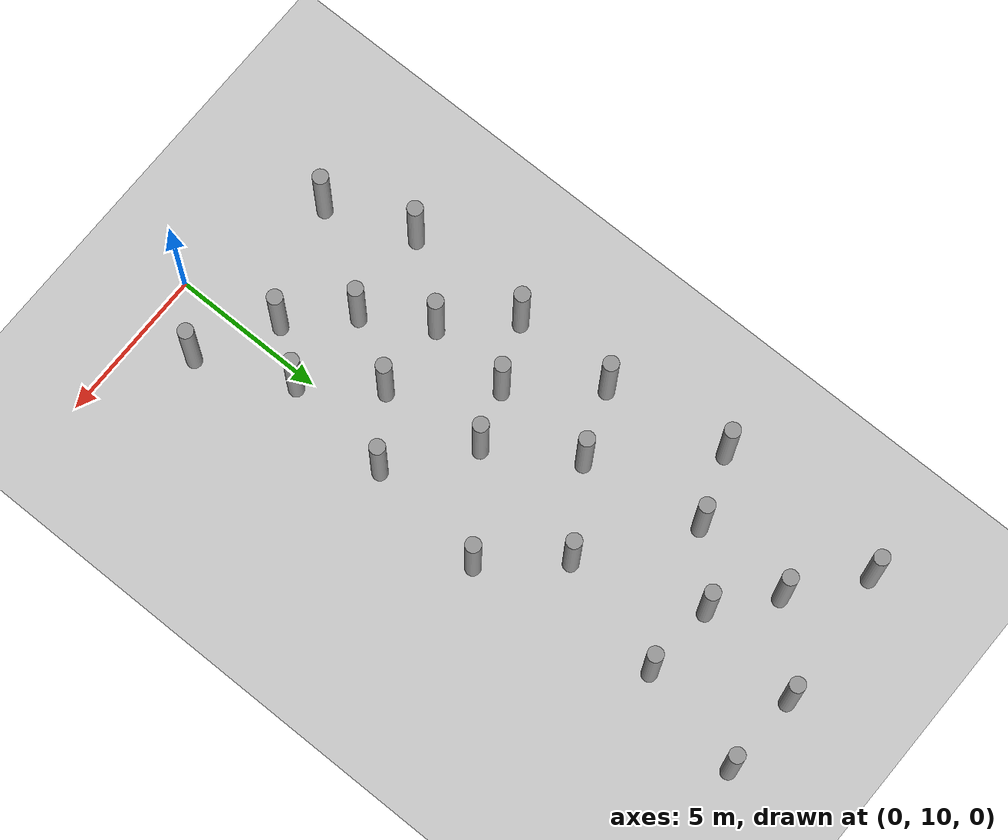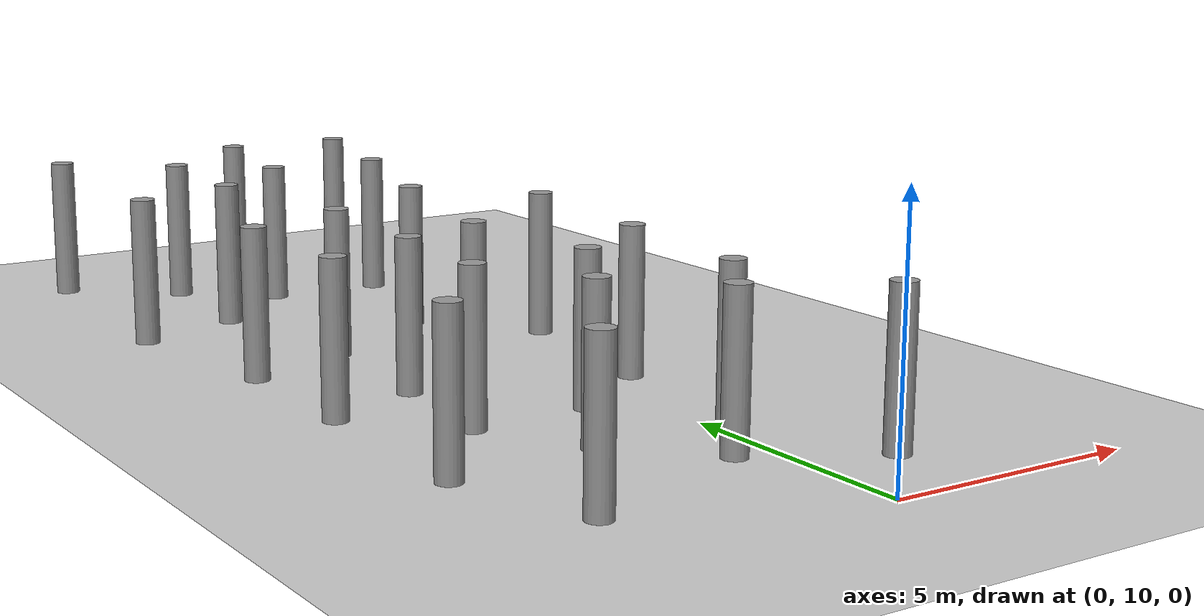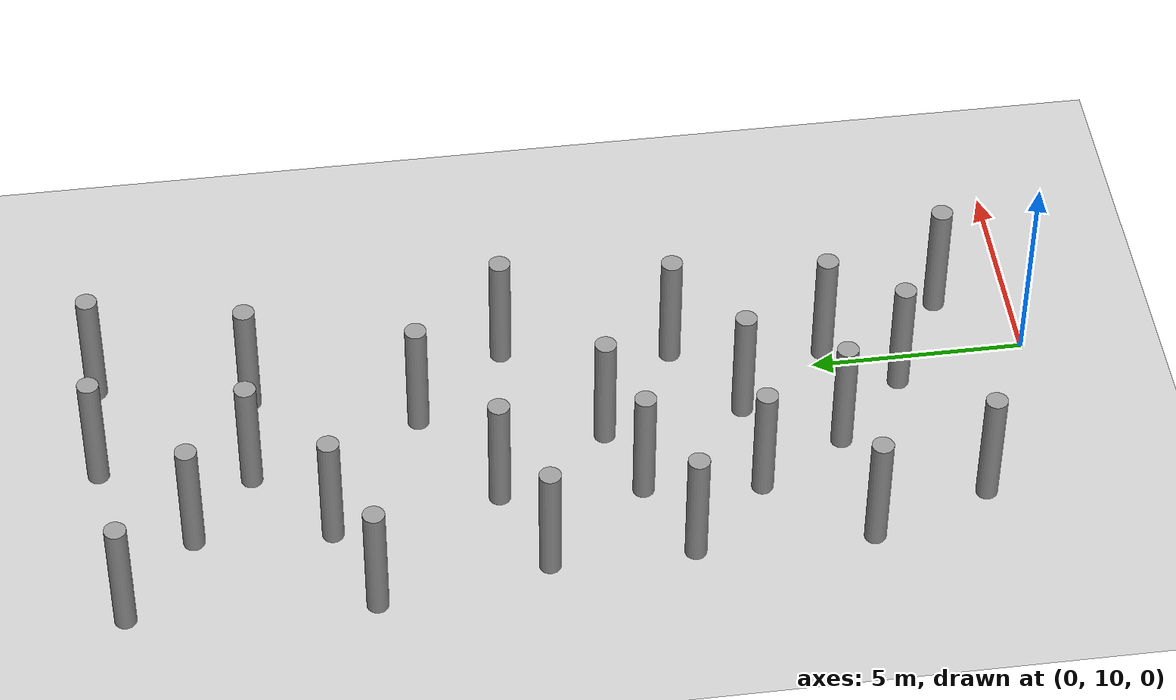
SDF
<sdf version="1.6">
 <world name="default">
  <model name="ground_plane">
   <static>1</static>
   <link name="link">
    <collision name="collision">
     <geometry><plane><normal>0 0 1</normal><size>100 100</size></plane></geometry>
     <surface><friction><ode><mu>100</mu><mu2>50</mu2></ode></friction></surface>
    </collision>
    <visual name="visual">
     <cast_shadows>0</cast_shadows>
     <geometry><plane><normal>0 0 1</normal><size>100 100</size></plane></geometry>
     <material>
      <script><uri>file://media/materials/scripts/gazebo.material</uri><name>Gazebo/Grey</name></script>
     </material>
    </visual>
   </link>
  </model>
  <model name="LjjForest_3">
   <link name="link_0">
    <inertial>
     <mass>1</mass>
     <inertia><ixx>0.145833</ixx><ixy>0</ixy><ixz>0</ixz><iyy>0.145833</iyy><iyz>0</iyz><izz>0.125</izz></inertia>
    </inertial>
    <pose>-5.02717 0.116957 0 0 -0 0</pose>
    <visual name="visual">
     <geometry><cylinder><radius>0.25</radius><length>3</length></cylinder></geometry>
     <material>
      <lighting>1</lighting>
      <script><uri>file://media/materials/scripts/gazebo.material</uri><name>Gazebo/Grey</name></script>
      <shader type="vertex"><normal_map>__default__</normal_map></shader>
      <ambient>0.3 0.3 0.3 1</ambient>
      <diffuse>0.7 0.7 0.7 1</diffuse>
      <specular>0.01 0.01 0.01 1</specular>
      <emissive>0 0 0 1</emissive>
     </material>
    </visual>
    <collision name="collision">
     <geometry><cylinder><radius>0.25</radius><length>3</length></cylinder></geometry>
     <surface>
      <friction>
       <ode><mu>1</mu><mu2>1</mu2><fdir1>0 0 0</fdir1><slip1>0</slip1><slip2>0</slip2></ode>
       <torsional>
        <coefficient>1</coefficient>
        <patch_radius>0</patch_radius>
        <surface_radius>0</surface_radius>
        <use_patch_radius>1</use_patch_radius>
        <ode><slip>0</slip></ode>
       </torsional>
      </friction>
      <bounce><restitution_coefficient>0</restitution_coefficient><threshold>1e+06</threshold></bounce>
      <contact>
       <collide_without_contact>0</collide_without_contact>
       <collide_without_contact_bitmask>1</collide_without_contact_bitmask>
       <collide_bitmask>1</collide_bitmask>
       <ode>
        <soft_cfm>0</soft_cfm>
        <soft_erp>0.2</soft_erp>
        <kp>1e+13</kp>
        <kd>1</kd>
        <max_vel>0.01</max_vel>
        <min_depth>0</min_depth>
       </ode>
       <bullet>
        <split_impulse>1</split_impulse>
        <split_impulse_penetration_threshold>-0.01</split_impulse_penetration_threshold>
        <soft_cfm>0</soft_cfm>
        <soft_erp>0.2</soft_erp>
        <kp>1e+13</kp>
        <kd>1</kd>
       </bullet>
      </contact>
     </surface>
    </collision>
   </link>
   <link name="link_0_clone">
    <inertial>
     <mass>1</mass>
     <inertia><ixx>0.145833</ixx><ixy>0</ixy><ixz>0</ixz><iyy>0.145833</iyy><iyz>0</iyz><izz>0.125</izz></inertia>
    </inertial>
    <pose>-2.83119 0.981911 0 0 -0 0</pose>
    <visual name="visual">
     <geometry><cylinder><radius>0.25</radius><length>3</length></cylinder></geometry>
     <material>
      <lighting>1</lighting>
      <script><uri>file://media/materials/scripts/gazebo.material</uri><name>Gazebo/Grey</name></script>
      <shader type="vertex"><normal_map>__default__</normal_map></shader>
      <ambient>0.3 0.3 0.3 1</ambient>
      <diffuse>0.7 0.7 0.7 1</diffuse>
      <specular>0.01 0.01 0.01 1</specular>
      <emissive>0 0 0 1</emissive>
     </material>
    </visual>
    <collision name="collision">
     <geometry><cylinder><radius>0.25</radius><length>3</length></cylinder></geometry>
     <surface>
      <friction>
       <ode><mu>1</mu><mu2>1</mu2><fdir1>0 0 0</fdir1><slip1>0</slip1><slip2>0</slip2></ode>
       <torsional>
        <coefficient>1</coefficient>
        <patch_radius>0</patch_radius>
        <surface_radius>0</surface_radius>
        <use_patch_radius>1</use_patch_radius>
        <ode><slip>0</slip></ode>
       </torsional>
      </friction>
      <bounce><restitution_coefficient>0</restitution_coefficient><threshold>1e+06</threshold></bounce>
      <contact>
       <collide_without_contact>0</collide_without_contact>
       <collide_without_contact_bitmask>1</collide_without_contact_bitmask>
       <collide_bitmask>1</collide_bitmask>
       <ode>
        <soft_cfm>0</soft_cfm>
        <soft_erp>0.2</soft_erp>
        <kp>1e+13</kp>
        <kd>1</kd>
        <max_vel>0.01</max_vel>
        <min_depth>0</min_depth>
       </ode>
       <bullet>
        <split_impulse>1</split_impulse>
        <split_impulse_penetration_threshold>-0.01</split_impulse_penetration_threshold>
        <soft_cfm>0</soft_cfm>
        <soft_erp>0.2</soft_erp>
        <kp>1e+13</kp>
        <kd>1</kd>
       </bullet>
      </contact>
     </surface>
    </collision>
   </link>
   <link name="link_0_clone_0">
    <inertial>
     <mass>1</mass>
     <inertia><ixx>0.145833</ixx><ixy>0</ixy><ixz>0</ixz><iyy>0.145833</iyy><iyz>0</iyz><izz>0.125</izz></inertia>
    </inertial>
    <pose>-0.25253 2.5682 0 0 -0 0</pose>
    <visual name="visual">
     <geometry><cylinder><radius>0.25</radius><length>3</length></cylinder></geometry>
     <material>
      <lighting>1</lighting>
      <script><uri>file://media/materials/scripts/gazebo.material</uri><name>Gazebo/Grey</name></script>
      <shader type="vertex"><normal_map>__default__</normal_map></shader>
      <ambient>0.3 0.3 0.3 1</ambient>
      <diffuse>0.7 0.7 0.7 1</diffuse>
      <specular>0.01 0.01 0.01 1</specular>
      <emissive>0 0 0 1</emissive>
     </material>
    </visual>
    <collision name="collision">
     <geometry><cylinder><radius>0.25</radius><length>3</length></cylinder></geometry>
     <surface>
      <friction>
       <ode><mu>1</mu><mu2>1</mu2><fdir1>0 0 0</fdir1><slip1>0</slip1><slip2>0</slip2></ode>
       <torsional>
        <coefficient>1</coefficient>
        <patch_radius>0</patch_radius>
        <surface_radius>0</surface_radius>
        <use_patch_radius>1</use_patch_radius>
        <ode><slip>0</slip></ode>
       </torsional>
      </friction>
      <bounce><restitution_coefficient>0</restitution_coefficient><threshold>1e+06</threshold></bounce>
      <contact>
       <collide_without_contact>0</collide_without_contact>
       <collide_without_contact_bitmask>1</collide_without_contact_bitmask>
       <collide_bitmask>1</collide_bitmask>
       <ode>
        <soft_cfm>0</soft_cfm>
        <soft_erp>0.2</soft_erp>
        <kp>1e+13</kp>
        <kd>1</kd>
        <max_vel>0.01</max_vel>
        <min_depth>0</min_depth>
       </ode>
       <bullet>
        <split_impulse>1</split_impulse>
        <split_impulse_penetration_threshold>-0.01</split_impulse_penetration_threshold>
        <soft_cfm>0</soft_cfm>
        <soft_erp>0.2</soft_erp>
        <kp>1e+13</kp>
        <kd>1</kd>
       </bullet>
      </contact>
     </surface>
    </collision>
   </link>
   <link name="link_0_clone_1">
    <inertial>
     <mass>1</mass>
     <inertia><ixx>0.145833</ixx><ixy>0</ixy><ixz>0</ixz><iyy>0.145833</iyy><iyz>0</iyz><izz>0.125</izz></inertia>
    </inertial>
    <pose>-1.2394 -1.64814 0 0 -0 0</pose>
    <visual name="visual">
     <geometry><cylinder><radius>0.25</radius><length>3</length></cylinder></geometry>
     <material>
      <lighting>1</lighting>
      <script><uri>file://media/materials/scripts/gazebo.material</uri><name>Gazebo/Grey</name></script>
      <shader type="vertex"><normal_map>__default__</normal_map></shader>
      <ambient>0.3 0.3 0.3 1</ambient>
      <diffuse>0.7 0.7 0.7 1</diffuse>
      <specular>0.01 0.01 0.01 1</specular>
      <emissive>0 0 0 1</emissive>
     </material>
    </visual>
    <collision name="collision">
     <geometry><cylinder><radius>0.25</radius><length>3</length></cylinder></geometry>
     <surface>
      <friction>
       <ode><mu>1</mu><mu2>1</mu2><fdir1>0 0 0</fdir1><slip1>0</slip1><slip2>0</slip2></ode>
       <torsional>
        <coefficient>1</coefficient>
        <patch_radius>0</patch_radius>
        <surface_radius>0</surface_radius>
        <use_patch_radius>1</use_patch_radius>
        <ode><slip>0</slip></ode>
       </torsional>
      </friction>
      <bounce><restitution_coefficient>0</restitution_coefficient><threshold>1e+06</threshold></bounce>
      <contact>
       <collide_without_contact>0</collide_without_contact>
       <collide_without_contact_bitmask>1</collide_without_contact_bitmask>
       <collide_bitmask>1</collide_bitmask>
       <ode>
        <soft_cfm>0</soft_cfm>
        <soft_erp>0.2</soft_erp>
        <kp>1e+13</kp>
        <kd>1</kd>
        <max_vel>0.01</max_vel>
        <min_depth>0</min_depth>
       </ode>
       <bullet>
        <split_impulse>1</split_impulse>
        <split_impulse_penetration_threshold>-0.01</split_impulse_penetration_threshold>
        <soft_cfm>0</soft_cfm>
        <soft_erp>0.2</soft_erp>
        <kp>1e+13</kp>
        <kd>1</kd>
       </bullet>
      </contact>
     </surface>
    </collision>
   </link>
   <link name="link_0_clone_13">
    <inertial>
     <mass>1</mass>
     <inertia><ixx>0.145833</ixx><ixy>0</ixy><ixz>0</ixz><iyy>0.145833</iyy><iyz>0</iyz><izz>0.125</izz></inertia>
    </inertial>
    <pose>0.731055 -7.10049 0 0 -0 0</pose>
    <visual name="visual">
     <geometry><cylinder><radius>0.25</radius><length>3</length></cylinder></geometry>
     <material>
      <lighting>1</lighting>
      <script><uri>file://media/materials/scripts/gazebo.material</uri><name>Gazebo/Grey</name></script>
      <shader type="vertex"><normal_map>__default__</normal_map></shader>
      <ambient>0.3 0.3 0.3 1</ambient>
      <diffuse>0.7 0.7 0.7 1</diffuse>
      <specular>0.01 0.01 0.01 1</specular>
      <emissive>0 0 0 1</emissive>
     </material>
    </visual>
    <collision name="collision">
     <geometry><cylinder><radius>0.25</radius><length>3</length></cylinder></geometry>
     <surface>
      <friction>
       <ode><mu>1</mu><mu2>1</mu2><fdir1>0 0 0</fdir1><slip1>0</slip1><slip2>0</slip2></ode>
       <torsional>
        <coefficient>1</coefficient>
        <patch_radius>0</patch_radius>
        <surface_radius>0</surface_radius>
        <use_patch_radius>1</use_patch_radius>
        <ode><slip>0</slip></ode>
       </torsional>
      </friction>
      <bounce><restitution_coefficient>0</restitution_coefficient><threshold>1e+06</threshold></bounce>
      <contact>
       <collide_without_contact>0</collide_without_contact>
       <collide_without_contact_bitmask>1</collide_without_contact_bitmask>
       <collide_bitmask>1</collide_bitmask>
       <ode>
        <soft_cfm>0</soft_cfm>
        <soft_erp>0.2</soft_erp>
        <kp>1e+13</kp>
        <kd>1</kd>
        <max_vel>0.01</max_vel>
        <min_depth>0</min_depth>
       </ode>
       <bullet>
        <split_impulse>1</split_impulse>
        <split_impulse_penetration_threshold>-0.01</split_impulse_penetration_threshold>
        <soft_cfm>0</soft_cfm>
        <soft_erp>0.2</soft_erp>
        <kp>1e+13</kp>
        <kd>1</kd>
       </bullet>
      </contact>
     </surface>
    </collision>
   </link>
   <link name="link_0_clone_14">
    <inertial>
     <mass>1</mass>
     <inertia><ixx>0.145833</ixx><ixy>0</ixy><ixz>0</ixz><iyy>0.145833</iyy><iyz>0</iyz><izz>0.125</izz></inertia>
    </inertial>
    <pose>-0.840028 -4.93267 0 0 -0 0</pose>
    <visual name="visual">
     <geometry><cylinder><radius>0.25</radius><length>3</length></cylinder></geometry>
     <material>
      <lighting>1</lighting>
      <script><uri>file://media/materials/scripts/gazebo.material</uri><name>Gazebo/Grey</name></script>
      <shader type="vertex"><normal_map>__default__</normal_map></shader>
      <ambient>0.3 0.3 0.3 1</ambient>
      <diffuse>0.7 0.7 0.7 1</diffuse>
      <specular>0.01 0.01 0.01 1</specular>
      <emissive>0 0 0 1</emissive>
     </material>
    </visual>
    <collision name="collision">
     <geometry><cylinder><radius>0.25</radius><length>3</length></cylinder></geometry>
     <surface>
      <friction>
       <ode><mu>1</mu><mu2>1</mu2><fdir1>0 0 0</fdir1><slip1>0</slip1><slip2>0</slip2></ode>
       <torsional>
        <coefficient>1</coefficient>
        <patch_radius>0</patch_radius>
        <surface_radius>0</surface_radius>
        <use_patch_radius>1</use_patch_radius>
        <ode><slip>0</slip></ode>
       </torsional>
      </friction>
      <bounce><restitution_coefficient>0</restitution_coefficient><threshold>1e+06</threshold></bounce>
      <contact>
       <collide_without_contact>0</collide_without_contact>
       <collide_without_contact_bitmask>1</collide_without_contact_bitmask>
       <collide_bitmask>1</collide_bitmask>
       <ode>
        <soft_cfm>0</soft_cfm>
        <soft_erp>0.2</soft_erp>
        <kp>1e+13</kp>
        <kd>1</kd>
        <max_vel>0.01</max_vel>
        <min_depth>0</min_depth>
       </ode>
       <bullet>
        <split_impulse>1</split_impulse>
        <split_impulse_penetration_threshold>-0.01</split_impulse_penetration_threshold>
        <soft_cfm>0</soft_cfm>
        <soft_erp>0.2</soft_erp>
        <kp>1e+13</kp>
        <kd>1</kd>
       </bullet>
      </contact>
     </surface>
    </collision>
   </link>
   <link name="link_0_clone_15">
    <inertial>
     <mass>1</mass>
     <inertia><ixx>0.145833</ixx><ixy>0</ixy><ixz>0</ixz><iyy>0.145833</iyy><iyz>0</iyz><izz>0.125</izz></inertia>
    </inertial>
    <pose>-3.03254 -2.29236 0 0 -0 0</pose>
    <visual name="visual">
     <geometry><cylinder><radius>0.25</radius><length>3</length></cylinder></geometry>
     <material>
      <lighting>1</lighting>
      <script><uri>file://media/materials/scripts/gazebo.material</uri><name>Gazebo/Grey</name></script>
      <shader type="vertex"><normal_map>__default__</normal_map></shader>
      <ambient>0.3 0.3 0.3 1</ambient>
      <diffuse>0.7 0.7 0.7 1</diffuse>
      <specular>0.01 0.01 0.01 1</specular>
      <emissive>0 0 0 1</emissive>
     </material>
    </visual>
    <collision name="collision">
     <geometry><cylinder><radius>0.25</radius><length>3</length></cylinder></geometry>
     <surface>
      <friction>
       <ode><mu>1</mu><mu2>1</mu2><fdir1>0 0 0</fdir1><slip1>0</slip1><slip2>0</slip2></ode>
       <torsional>
        <coefficient>1</coefficient>
        <patch_radius>0</patch_radius>
        <surface_radius>0</surface_radius>
        <use_patch_radius>1</use_patch_radius>
        <ode><slip>0</slip></ode>
       </torsional>
      </friction>
      <bounce><restitution_coefficient>0</restitution_coefficient><threshold>1e+06</threshold></bounce>
      <contact>
       <collide_without_contact>0</collide_without_contact>
       <collide_without_contact_bitmask>1</collide_without_contact_bitmask>
       <collide_bitmask>1</collide_bitmask>
       <ode>
        <soft_cfm>0</soft_cfm>
        <soft_erp>0.2</soft_erp>
        <kp>1e+13</kp>
        <kd>1</kd>
        <max_vel>0.01</max_vel>
        <min_depth>0</min_depth>
       </ode>
       <bullet>
        <split_impulse>1</split_impulse>
        <split_impulse_penetration_threshold>-0.01</split_impulse_penetration_threshold>
        <soft_cfm>0</soft_cfm>
        <soft_erp>0.2</soft_erp>
        <kp>1e+13</kp>
        <kd>1</kd>
       </bullet>
      </contact>
     </surface>
    </collision>
   </link>
   <link name="link_0_clone_16">
    <inertial>
     <mass>1</mass>
     <inertia><ixx>0.145833</ixx><ixy>0</ixy><ixz>0</ixz><iyy>0.145833</iyy><iyz>0</iyz><izz>0.125</izz></inertia>
    </inertial>
    <pose>-5.04025 -3.1815 0 0 -0 0</pose>
    <visual name="visual">
     <geometry><cylinder><radius>0.25</radius><length>3</length></cylinder></geometry>
     <material>
      <lighting>1</lighting>
      <script><uri>file://media/materials/scripts/gazebo.material</uri><name>Gazebo/Grey</name></script>
      <shader type="vertex"><normal_map>__default__</normal_map></shader>
      <ambient>0.3 0.3 0.3 1</ambient>
      <diffuse>0.7 0.7 0.7 1</diffuse>
      <specular>0.01 0.01 0.01 1</specular>
      <emissive>0 0 0 1</emissive>
     </material>
    </visual>
    <collision name="collision">
     <geometry><cylinder><radius>0.25</radius><length>3</length></cylinder></geometry>
     <surface>
      <friction>
       <ode><mu>1</mu><mu2>1</mu2><fdir1>0 0 0</fdir1><slip1>0</slip1><slip2>0</slip2></ode>
       <torsional>
        <coefficient>1</coefficient>
        <patch_radius>0</patch_radius>
        <surface_radius>0</surface_radius>
        <use_patch_radius>1</use_patch_radius>
        <ode><slip>0</slip></ode>
       </torsional>
      </friction>
      <bounce><restitution_coefficient>0</restitution_coefficient><threshold>1e+06</threshold></bounce>
      <contact>
       <collide_without_contact>0</collide_without_contact>
       <collide_without_contact_bitmask>1</collide_without_contact_bitmask>
       <collide_bitmask>1</collide_bitmask>
       <ode>
        <soft_cfm>0</soft_cfm>
        <soft_erp>0.2</soft_erp>
        <kp>1e+13</kp>
        <kd>1</kd>
        <max_vel>0.01</max_vel>
        <min_depth>0</min_depth>
       </ode>
       <bullet>
        <split_impulse>1</split_impulse>
        <split_impulse_penetration_threshold>-0.01</split_impulse_penetration_threshold>
        <soft_cfm>0</soft_cfm>
        <soft_erp>0.2</soft_erp>
        <kp>1e+13</kp>
        <kd>1</kd>
       </bullet>
      </contact>
     </surface>
    </collision>
   </link>
   <link name="link_0_clone_17">
    <inertial>
     <mass>1</mass>
     <inertia><ixx>0.145833</ixx><ixy>0</ixy><ixz>0</ixz><iyy>0.145833</iyy><iyz>0</iyz><izz>0.125</izz></inertia>
    </inertial>
    <pose>-3.28823 -4.99733 0 0 -0 0</pose>
    <visual name="visual">
     <geometry><cylinder><radius>0.25</radius><length>3</length></cylinder></geometry>
     <material>
      <lighting>1</lighting>
      <script><uri>file://media/materials/scripts/gazebo.material</uri><name>Gazebo/Grey</name></script>
      <shader type="vertex"><normal_map>__default__</normal_map></shader>
      <ambient>0.3 0.3 0.3 1</ambient>
      <diffuse>0.7 0.7 0.7 1</diffuse>
      <specular>0.01 0.01 0.01 1</specular>
      <emissive>0 0 0 1</emissive>
     </material>
    </visual>
    <collision name="collision">
     <geometry><cylinder><radius>0.25</radius><length>3</length></cylinder></geometry>
     <surface>
      <friction>
       <ode><mu>1</mu><mu2>1</mu2><fdir1>0 0 0</fdir1><slip1>0</slip1><slip2>0</slip2></ode>
       <torsional>
        <coefficient>1</coefficient>
        <patch_radius>0</patch_radius>
        <surface_radius>0</surface_radius>
        <use_patch_radius>1</use_patch_radius>
        <ode><slip>0</slip></ode>
       </torsional>
      </friction>
      <bounce><restitution_coefficient>0</restitution_coefficient><threshold>1e+06</threshold></bounce>
      <contact>
       <collide_without_contact>0</collide_without_contact>
       <collide_without_contact_bitmask>1</collide_without_contact_bitmask>
       <collide_bitmask>1</collide_bitmask>
       <ode>
        <soft_cfm>0</soft_cfm>
        <soft_erp>0.2</soft_erp>
        <kp>1e+13</kp>
        <kd>1</kd>
        <max_vel>0.01</max_vel>
        <min_depth>0</min_depth>
       </ode>
       <bullet>
        <split_impulse>1</split_impulse>
        <split_impulse_penetration_threshold>-0.01</split_impulse_penetration_threshold>
        <soft_cfm>0</soft_cfm>
        <soft_erp>0.2</soft_erp>
        <kp>1e+13</kp>
        <kd>1</kd>
       </bullet>
      </contact>
     </surface>
    </collision>
   </link>
   <link name="link_0_clone_18">
    <inertial>
     <mass>1</mass>
     <inertia><ixx>0.145833</ixx><ixy>0</ixy><ixz>0</ixz><iyy>0.145833</iyy><iyz>0</iyz><izz>0.125</izz></inertia>
    </inertial>
    <pose>-2.11118 -7.04502 0 0 -0 0</pose>
    <visual name="visual">
     <geometry><cylinder><radius>0.25</radius><length>3</length></cylinder></geometry>
     <material>
      <lighting>1</lighting>
      <script><uri>file://media/materials/scripts/gazebo.material</uri><name>Gazebo/Grey</name></script>
      <shader type="vertex"><normal_map>__default__</normal_map></shader>
      <ambient>0.3 0.3 0.3 1</ambient>
      <diffuse>0.7 0.7 0.7 1</diffuse>
      <specular>0.01 0.01 0.01 1</specular>
      <emissive>0 0 0 1</emissive>
     </material>
    </visual>
    <collision name="collision">
     <geometry><cylinder><radius>0.25</radius><length>3</length></cylinder></geometry>
     <surface>
      <friction>
       <ode><mu>1</mu><mu2>1</mu2><fdir1>0 0 0</fdir1><slip1>0</slip1><slip2>0</slip2></ode>
       <torsional>
        <coefficient>1</coefficient>
        <patch_radius>0</patch_radius>
        <surface_radius>0</surface_radius>
        <use_patch_radius>1</use_patch_radius>
        <ode><slip>0</slip></ode>
       </torsional>
      </friction>
      <bounce><restitution_coefficient>0</restitution_coefficient><threshold>1e+06</threshold></bounce>
      <contact>
       <collide_without_contact>0</collide_without_contact>
       <collide_without_contact_bitmask>1</collide_without_contact_bitmask>
       <collide_bitmask>1</collide_bitmask>
       <ode>
        <soft_cfm>0</soft_cfm>
        <soft_erp>0.2</soft_erp>
        <kp>1e+13</kp>
        <kd>1</kd>
        <max_vel>0.01</max_vel>
        <min_depth>0</min_depth>
       </ode>
       <bullet>
        <split_impulse>1</split_impulse>
        <split_impulse_penetration_threshold>-0.01</split_impulse_penetration_threshold>
        <soft_cfm>0</soft_cfm>
        <soft_erp>0.2</soft_erp>
        <kp>1e+13</kp>
        <kd>1</kd>
       </bullet>
      </contact>
     </surface>
    </collision>
   </link>
   <link name="link_0_clone_19">
    <inertial>
     <mass>1</mass>
     <inertia><ixx>0.145833</ixx><ixy>0</ixy><ixz>0</ixz><iyy>0.145833</iyy><iyz>0</iyz><izz>0.125</izz></inertia>
    </inertial>
    <pose>-0.4391 -8.69513 0 0 -0 0</pose>
    <visual name="visual">
     <geometry><cylinder><radius>0.25</radius><length>3</length></cylinder></geometry>
     <material>
      <lighting>1</lighting>
      <script><uri>file://media/materials/scripts/gazebo.material</uri><name>Gazebo/Grey</name></script>
      <shader type="vertex"><normal_map>__default__</normal_map></shader>
      <ambient>0.3 0.3 0.3 1</ambient>
      <diffuse>0.7 0.7 0.7 1</diffuse>
      <specular>0.01 0.01 0.01 1</specular>
      <emissive>0 0 0 1</emissive>
     </material>
    </visual>
    <collision name="collision">
     <geometry><cylinder><radius>0.25</radius><length>3</length></cylinder></geometry>
     <surface>
      <friction>
       <ode><mu>1</mu><mu2>1</mu2><fdir1>0 0 0</fdir1><slip1>0</slip1><slip2>0</slip2></ode>
       <torsional>
        <coefficient>1</coefficient>
        <patch_radius>0</patch_radius>
        <surface_radius>0</surface_radius>
        <use_patch_radius>1</use_patch_radius>
        <ode><slip>0</slip></ode>
       </torsional>
      </friction>
      <bounce><restitution_coefficient>0</restitution_coefficient><threshold>1e+06</threshold></bounce>
      <contact>
       <collide_without_contact>0</collide_without_contact>
       <collide_without_contact_bitmask>1</collide_without_contact_bitmask>
       <collide_bitmask>1</collide_bitmask>
       <ode>
        <soft_cfm>0</soft_cfm>
        <soft_erp>0.2</soft_erp>
        <kp>1e+13</kp>
        <kd>1</kd>
        <max_vel>0.01</max_vel>
        <min_depth>0</min_depth>
       </ode>
       <bullet>
        <split_impulse>1</split_impulse>
        <split_impulse_penetration_threshold>-0.01</split_impulse_penetration_threshold>
        <soft_cfm>0</soft_cfm>
        <soft_erp>0.2</soft_erp>
        <kp>1e+13</kp>
        <kd>1</kd>
       </bullet>
      </contact>
     </surface>
    </collision>
   </link>
   <link name="link_0_clone_2">
    <inertial>
     <mass>1</mass>
     <inertia><ixx>0.145833</ixx><ixy>0</ixy><ixz>0</ixz><iyy>0.145833</iyy><iyz>0</iyz><izz>0.125</izz></inertia>
    </inertial>
    <pose>1.64727 0.418921 0 0 -0 0</pose>
    <visual name="visual">
     <geometry><cylinder><radius>0.25</radius><length>3</length></cylinder></geometry>
     <material>
      <lighting>1</lighting>
      <script><uri>file://media/materials/scripts/gazebo.material</uri><name>Gazebo/Grey</name></script>
      <shader type="vertex"><normal_map>__default__</normal_map></shader>
      <ambient>0.3 0.3 0.3 1</ambient>
      <diffuse>0.7 0.7 0.7 1</diffuse>
      <specular>0.01 0.01 0.01 1</specular>
      <emissive>0 0 0 1</emissive>
     </material>
    </visual>
    <collision name="collision">
     <geometry><cylinder><radius>0.25</radius><length>3</length></cylinder></geometry>
     <surface>
      <friction>
       <ode><mu>1</mu><mu2>1</mu2><fdir1>0 0 0</fdir1><slip1>0</slip1><slip2>0</slip2></ode>
       <torsional>
        <coefficient>1</coefficient>
        <patch_radius>0</patch_radius>
        <surface_radius>0</surface_radius>
        <use_patch_radius>1</use_patch_radius>
        <ode><slip>0</slip></ode>
       </torsional>
      </friction>
      <bounce><restitution_coefficient>0</restitution_coefficient><threshold>1e+06</threshold></bounce>
      <contact>
       <collide_without_contact>0</collide_without_contact>
       <collide_without_contact_bitmask>1</collide_without_contact_bitmask>
       <collide_bitmask>1</collide_bitmask>
       <ode>
        <soft_cfm>0</soft_cfm>
        <soft_erp>0.2</soft_erp>
        <kp>1e+13</kp>
        <kd>1</kd>
        <max_vel>0.01</max_vel>
        <min_depth>0</min_depth>
       </ode>
       <bullet>
        <split_impulse>1</split_impulse>
        <split_impulse_penetration_threshold>-0.01</split_impulse_penetration_threshold>
        <soft_cfm>0</soft_cfm>
        <soft_erp>0.2</soft_erp>
        <kp>1e+13</kp>
        <kd>1</kd>
       </bullet>
      </contact>
     </surface>
    </collision>
   </link>
   <link name="link_0_clone_20">
    <inertial>
     <mass>1</mass>
     <inertia><ixx>0.145833</ixx><ixy>0</ixy><ixz>0</ixz><iyy>0.145833</iyy><iyz>0</iyz><izz>0.125</izz></inertia>
    </inertial>
    <pose>1.97365 -10.0303 0 0 -0 0</pose>
    <visual name="visual">
     <geometry><cylinder><radius>0.25</radius><length>3</length></cylinder></geometry>
     <material>
      <lighting>1</lighting>
      <script><uri>file://media/materials/scripts/gazebo.material</uri><name>Gazebo/Grey</name></script>
      <shader type="vertex"><normal_map>__default__</normal_map></shader>
      <ambient>0.3 0.3 0.3 1</ambient>
      <diffuse>0.7 0.7 0.7 1</diffuse>
      <specular>0.01 0.01 0.01 1</specular>
      <emissive>0 0 0 1</emissive>
     </material>
    </visual>
    <collision name="collision">
     <geometry><cylinder><radius>0.25</radius><length>3</length></cylinder></geometry>
     <surface>
      <friction>
       <ode><mu>1</mu><mu2>1</mu2><fdir1>0 0 0</fdir1><slip1>0</slip1><slip2>0</slip2></ode>
       <torsional>
        <coefficient>1</coefficient>
        <patch_radius>0</patch_radius>
        <surface_radius>0</surface_radius>
        <use_patch_radius>1</use_patch_radius>
        <ode><slip>0</slip></ode>
       </torsional>
      </friction>
      <bounce><restitution_coefficient>0</restitution_coefficient><threshold>1e+06</threshold></bounce>
      <contact>
       <collide_without_contact>0</collide_without_contact>
       <collide_without_contact_bitmask>1</collide_without_contact_bitmask>
       <collide_bitmask>1</collide_bitmask>
       <ode>
        <soft_cfm>0</soft_cfm>
        <soft_erp>0.2</soft_erp>
        <kp>1e+13</kp>
        <kd>1</kd>
        <max_vel>0.01</max_vel>
        <min_depth>0</min_depth>
       </ode>
       <bullet>
        <split_impulse>1</split_impulse>
        <split_impulse_penetration_threshold>-0.01</split_impulse_penetration_threshold>
        <soft_cfm>0</soft_cfm>
        <soft_erp>0.2</soft_erp>
        <kp>1e+13</kp>
        <kd>1</kd>
       </bullet>
      </contact>
     </surface>
    </collision>
   </link>
   <link name="link_0_clone_21">
    <inertial>
     <mass>1</mass>
     <inertia><ixx>0.145833</ixx><ixy>0</ixy><ixz>0</ixz><iyy>0.145833</iyy><iyz>0</iyz><izz>0.125</izz></inertia>
    </inertial>
    <pose>-4.11405 -10.0375 0 0 -0 0</pose>
    <visual name="visual">
     <geometry><cylinder><radius>0.25</radius><length>3</length></cylinder></geometry>
     <material>
      <lighting>1</lighting>
      <script><uri>file://media/materials/scripts/gazebo.material</uri><name>Gazebo/Grey</name></script>
      <shader type="vertex"><normal_map>__default__</normal_map></shader>
      <ambient>0.3 0.3 0.3 1</ambient>
      <diffuse>0.7 0.7 0.7 1</diffuse>
      <specular>0.01 0.01 0.01 1</specular>
      <emissive>0 0 0 1</emissive>
     </material>
    </visual>
    <collision name="collision">
     <geometry><cylinder><radius>0.25</radius><length>3</length></cylinder></geometry>
     <surface>
      <friction>
       <ode><mu>1</mu><mu2>1</mu2><fdir1>0 0 0</fdir1><slip1>0</slip1><slip2>0</slip2></ode>
       <torsional>
        <coefficient>1</coefficient>
        <patch_radius>0</patch_radius>
        <surface_radius>0</surface_radius>
        <use_patch_radius>1</use_patch_radius>
        <ode><slip>0</slip></ode>
       </torsional>
      </friction>
      <bounce><restitution_coefficient>0</restitution_coefficient><threshold>1e+06</threshold></bounce>
      <contact>
       <collide_without_contact>0</collide_without_contact>
       <collide_without_contact_bitmask>1</collide_without_contact_bitmask>
       <collide_bitmask>1</collide_bitmask>
       <ode>
        <soft_cfm>0</soft_cfm>
        <soft_erp>0.2</soft_erp>
        <kp>1e+13</kp>
        <kd>1</kd>
        <max_vel>0.01</max_vel>
        <min_depth>0</min_depth>
       </ode>
       <bullet>
        <split_impulse>1</split_impulse>
        <split_impulse_penetration_threshold>-0.01</split_impulse_penetration_threshold>
        <soft_cfm>0</soft_cfm>
        <soft_erp>0.2</soft_erp>
        <kp>1e+13</kp>
        <kd>1</kd>
       </bullet>
      </contact>
     </surface>
    </collision>
   </link>
   <link name="link_0_clone_22">
    <inertial>
     <mass>1</mass>
     <inertia><ixx>0.145833</ixx><ixy>0</ixy><ixz>0</ixz><iyy>0.145833</iyy><iyz>0</iyz><izz>0.125</izz></inertia>
    </inertial>
    <pose>-5.1094 -7.26741 0 0 -0 0</pose>
    <visual name="visual">
     <geometry><cylinder><radius>0.25</radius><length>3</length></cylinder></geometry>
     <material>
      <lighting>1</lighting>
      <script><uri>file://media/materials/scripts/gazebo.material</uri><name>Gazebo/Grey</name></script>
      <shader type="vertex"><normal_map>__default__</normal_map></shader>
      <ambient>0.3 0.3 0.3 1</ambient>
      <diffuse>0.7 0.7 0.7 1</diffuse>
      <specular>0.01 0.01 0.01 1</specular>
      <emissive>0 0 0 1</emissive>
     </material>
    </visual>
    <collision name="collision">
     <geometry><cylinder><radius>0.25</radius><length>3</length></cylinder></geometry>
     <surface>
      <friction>
       <ode><mu>1</mu><mu2>1</mu2><fdir1>0 0 0</fdir1><slip1>0</slip1><slip2>0</slip2></ode>
       <torsional>
        <coefficient>1</coefficient>
        <patch_radius>0</patch_radius>
        <surface_radius>0</surface_radius>
        <use_patch_radius>1</use_patch_radius>
        <ode><slip>0</slip></ode>
       </torsional>
      </friction>
      <bounce><restitution_coefficient>0</restitution_coefficient><threshold>1e+06</threshold></bounce>
      <contact>
       <collide_without_contact>0</collide_without_contact>
       <collide_without_contact_bitmask>1</collide_without_contact_bitmask>
       <collide_bitmask>1</collide_bitmask>
       <ode>
        <soft_cfm>0</soft_cfm>
        <soft_erp>0.2</soft_erp>
        <kp>1e+13</kp>
        <kd>1</kd>
        <max_vel>0.01</max_vel>
        <min_depth>0</min_depth>
       </ode>
       <bullet>
        <split_impulse>1</split_impulse>
        <split_impulse_penetration_threshold>-0.01</split_impulse_penetration_threshold>
        <soft_cfm>0</soft_cfm>
        <soft_erp>0.2</soft_erp>
        <kp>1e+13</kp>
        <kd>1</kd>
       </bullet>
      </contact>
     </surface>
    </collision>
   </link>
   <link name="link_0_clone_23">
    <inertial>
     <mass>1</mass>
     <inertia><ixx>0.145833</ixx><ixy>0</ixy><ixz>0</ixz><iyy>0.145833</iyy><iyz>0</iyz><izz>0.125</izz></inertia>
    </inertial>
    <pose>-5.66615 4.05911 0 0 -0 0</pose>
    <visual name="visual">
     <geometry><cylinder><radius>0.25</radius><length>3</length></cylinder></geometry>
     <material>
      <lighting>1</lighting>
      <script><uri>file://media/materials/scripts/gazebo.material</uri><name>Gazebo/Grey</name></script>
      <shader type="vertex"><normal_map>__default__</normal_map></shader>
      <ambient>0.3 0.3 0.3 1</ambient>
      <diffuse>0.7 0.7 0.7 1</diffuse>
      <specular>0.01 0.01 0.01 1</specular>
      <emissive>0 0 0 1</emissive>
     </material>
    </visual>
    <collision name="collision">
     <geometry><cylinder><radius>0.25</radius><length>3</length></cylinder></geometry>
     <surface>
      <friction>
       <ode><mu>1</mu><mu2>1</mu2><fdir1>0 0 0</fdir1><slip1>0</slip1><slip2>0</slip2></ode>
       <torsional>
        <coefficient>1</coefficient>
        <patch_radius>0</patch_radius>
        <surface_radius>0</surface_radius>
        <use_patch_radius>1</use_patch_radius>
        <ode><slip>0</slip></ode>
       </torsional>
      </friction>
      <bounce><restitution_coefficient>0</restitution_coefficient><threshold>1e+06</threshold></bounce>
      <contact>
       <collide_without_contact>0</collide_without_contact>
       <collide_without_contact_bitmask>1</collide_without_contact_bitmask>
       <collide_bitmask>1</collide_bitmask>
       <ode>
        <soft_cfm>0</soft_cfm>
        <soft_erp>0.2</soft_erp>
        <kp>1e+13</kp>
        <kd>1</kd>
        <max_vel>0.01</max_vel>
        <min_depth>0</min_depth>
       </ode>
       <bullet>
        <split_impulse>1</split_impulse>
        <split_impulse_penetration_threshold>-0.01</split_impulse_penetration_threshold>
        <soft_cfm>0</soft_cfm>
        <soft_erp>0.2</soft_erp>
        <kp>1e+13</kp>
        <kd>1</kd>
       </bullet>
      </contact>
     </surface>
    </collision>
   </link>
   <link name="link_0_clone_26">
    <inertial>
     <mass>1</mass>
     <inertia><ixx>0.145833</ixx><ixy>0</ixy><ixz>0</ixz><iyy>0.145833</iyy><iyz>0</iyz><izz>0.125</izz></inertia>
    </inertial>
    <pose>1.66794 9.91533 0 0 -0 0</pose>
    <visual name="visual">
     <geometry><cylinder><radius>0.25</radius><length>3</length></cylinder></geometry>
     <material>
      <lighting>1</lighting>
      <script><uri>file://media/materials/scripts/gazebo.material</uri><name>Gazebo/Grey</name></script>
      <shader type="vertex"><normal_map>__default__</normal_map></shader>
      <ambient>0.3 0.3 0.3 1</ambient>
      <diffuse>0.7 0.7 0.7 1</diffuse>
      <specular>0.01 0.01 0.01 1</specular>
      <emissive>0 0 0 1</emissive>
     </material>
    </visual>
    <collision name="collision">
     <geometry><cylinder><radius>0.25</radius><length>3</length></cylinder></geometry>
     <surface>
      <friction>
       <ode><mu>1</mu><mu2>1</mu2><fdir1>0 0 0</fdir1><slip1>0</slip1><slip2>0</slip2></ode>
       <torsional>
        <coefficient>1</coefficient>
        <patch_radius>0</patch_radius>
        <surface_radius>0</surface_radius>
        <use_patch_radius>1</use_patch_radius>
        <ode><slip>0</slip></ode>
       </torsional>
      </friction>
      <bounce><restitution_coefficient>0</restitution_coefficient><threshold>1e+06</threshold></bounce>
      <contact>
       <collide_without_contact>0</collide_without_contact>
       <collide_without_contact_bitmask>1</collide_without_contact_bitmask>
       <collide_bitmask>1</collide_bitmask>
       <ode>
        <soft_cfm>0</soft_cfm>
        <soft_erp>0.2</soft_erp>
        <kp>1e+13</kp>
        <kd>1</kd>
        <max_vel>0.01</max_vel>
        <min_depth>0</min_depth>
       </ode>
       <bullet>
        <split_impulse>1</split_impulse>
        <split_impulse_penetration_threshold>-0.01</split_impulse_penetration_threshold>
        <soft_cfm>0</soft_cfm>
        <soft_erp>0.2</soft_erp>
        <kp>1e+13</kp>
        <kd>1</kd>
       </bullet>
      </contact>
     </surface>
    </collision>
   </link>
   <link name="link_0_clone_27">
    <inertial>
     <mass>1</mass>
     <inertia><ixx>0.145833</ixx><ixy>0</ixy><ixz>0</ixz><iyy>0.145833</iyy><iyz>0</iyz><izz>0.125</izz></inertia>
    </inertial>
    <pose>-0.975859 10.0087 0 0 -0 0</pose>
    <visual name="visual">
     <geometry><cylinder><radius>0.25</radius><length>3</length></cylinder></geometry>
     <material>
      <lighting>1</lighting>
      <script><uri>file://media/materials/scripts/gazebo.material</uri><name>Gazebo/Grey</name></script>
      <shader type="vertex"><normal_map>__default__</normal_map></shader>
      <ambient>0.3 0.3 0.3 1</ambient>
      <diffuse>0.7 0.7 0.7 1</diffuse>
      <specular>0.01 0.01 0.01 1</specular>
      <emissive>0 0 0 1</emissive>
     </material>
    </visual>
    <collision name="collision">
     <geometry><cylinder><radius>0.25</radius><length>3</length></cylinder></geometry>
     <surface>
      <friction>
       <ode><mu>1</mu><mu2>1</mu2><fdir1>0 0 0</fdir1><slip1>0</slip1><slip2>0</slip2></ode>
       <torsional>
        <coefficient>1</coefficient>
        <patch_radius>0</patch_radius>
        <surface_radius>0</surface_radius>
        <use_patch_radius>1</use_patch_radius>
        <ode><slip>0</slip></ode>
       </torsional>
      </friction>
      <bounce><restitution_coefficient>0</restitution_coefficient><threshold>1e+06</threshold></bounce>
      <contact>
       <collide_without_contact>0</collide_without_contact>
       <collide_without_contact_bitmask>1</collide_without_contact_bitmask>
       <collide_bitmask>1</collide_bitmask>
       <ode>
        <soft_cfm>0</soft_cfm>
        <soft_erp>0.2</soft_erp>
        <kp>1e+13</kp>
        <kd>1</kd>
        <max_vel>0.01</max_vel>
        <min_depth>0</min_depth>
       </ode>
       <bullet>
        <split_impulse>1</split_impulse>
        <split_impulse_penetration_threshold>-0.01</split_impulse_penetration_threshold>
        <soft_cfm>0</soft_cfm>
        <soft_erp>0.2</soft_erp>
        <kp>1e+13</kp>
        <kd>1</kd>
       </bullet>
      </contact>
     </surface>
    </collision>
   </link>
   <link name="link_0_clone_28">
    <inertial>
     <mass>1</mass>
     <inertia><ixx>0.145833</ixx><ixy>0</ixy><ixz>0</ixz><iyy>0.145833</iyy><iyz>0</iyz><izz>0.125</izz></inertia>
    </inertial>
    <pose>-3.28832 7.97521 0 0 -0 0</pose>
    <visual name="visual">
     <geometry><cylinder><radius>0.25</radius><length>3</length></cylinder></geometry>
     <material>
      <lighting>1</lighting>
      <script><uri>file://media/materials/scripts/gazebo.material</uri><name>Gazebo/Grey</name></script>
      <shader type="vertex"><normal_map>__default__</normal_map></shader>
      <ambient>0.3 0.3 0.3 1</ambient>
      <diffuse>0.7 0.7 0.7 1</diffuse>
      <specular>0.01 0.01 0.01 1</specular>
      <emissive>0 0 0 1</emissive>
     </material>
    </visual>
    <collision name="collision">
     <geometry><cylinder><radius>0.25</radius><length>3</length></cylinder></geometry>
     <surface>
      <friction>
       <ode><mu>1</mu><mu2>1</mu2><fdir1>0 0 0</fdir1><slip1>0</slip1><slip2>0</slip2></ode>
       <torsional>
        <coefficient>1</coefficient>
        <patch_radius>0</patch_radius>
        <surface_radius>0</surface_radius>
        <use_patch_radius>1</use_patch_radius>
        <ode><slip>0</slip></ode>
       </torsional>
      </friction>
      <bounce><restitution_coefficient>0</restitution_coefficient><threshold>1e+06</threshold></bounce>
      <contact>
       <collide_without_contact>0</collide_without_contact>
       <collide_without_contact_bitmask>1</collide_without_contact_bitmask>
       <collide_bitmask>1</collide_bitmask>
       <ode>
        <soft_cfm>0</soft_cfm>
        <soft_erp>0.2</soft_erp>
        <kp>1e+13</kp>
        <kd>1</kd>
        <max_vel>0.01</max_vel>
        <min_depth>0</min_depth>
       </ode>
       <bullet>
        <split_impulse>1</split_impulse>
        <split_impulse_penetration_threshold>-0.01</split_impulse_penetration_threshold>
        <soft_cfm>0</soft_cfm>
        <soft_erp>0.2</soft_erp>
        <kp>1e+13</kp>
        <kd>1</kd>
       </bullet>
      </contact>
     </surface>
    </collision>
   </link>
   <link name="link_0_clone_29">
    <inertial>
     <mass>1</mass>
     <inertia><ixx>0.145833</ixx><ixy>0</ixy><ixz>0</ixz><iyy>0.145833</iyy><iyz>0</iyz><izz>0.125</izz></inertia>
    </inertial>
    <pose>-5.38645 9.63545 0 0 -0 0</pose>
    <visual name="visual">
     <geometry><cylinder><radius>0.25</radius><length>3</length></cylinder></geometry>
     <material>
      <lighting>1</lighting>
      <script><uri>file://media/materials/scripts/gazebo.material</uri><name>Gazebo/Grey</name></script>
      <shader type="vertex"><normal_map>__default__</normal_map></shader>
      <ambient>0.3 0.3 0.3 1</ambient>
      <diffuse>0.7 0.7 0.7 1</diffuse>
      <specular>0.01 0.01 0.01 1</specular>
      <emissive>0 0 0 1</emissive>
     </material>
    </visual>
    <collision name="collision">
     <geometry><cylinder><radius>0.25</radius><length>3</length></cylinder></geometry>
     <surface>
      <friction>
       <ode><mu>1</mu><mu2>1</mu2><fdir1>0 0 0</fdir1><slip1>0</slip1><slip2>0</slip2></ode>
       <torsional>
        <coefficient>1</coefficient>
        <patch_radius>0</patch_radius>
        <surface_radius>0</surface_radius>
        <use_patch_radius>1</use_patch_radius>
        <ode><slip>0</slip></ode>
       </torsional>
      </friction>
      <bounce><restitution_coefficient>0</restitution_coefficient><threshold>1e+06</threshold></bounce>
      <contact>
       <collide_without_contact>0</collide_without_contact>
       <collide_without_contact_bitmask>1</collide_without_contact_bitmask>
       <collide_bitmask>1</collide_bitmask>
       <ode>
        <soft_cfm>0</soft_cfm>
        <soft_erp>0.2</soft_erp>
        <kp>1e+13</kp>
        <kd>1</kd>
        <max_vel>0.01</max_vel>
        <min_depth>0</min_depth>
       </ode>
       <bullet>
        <split_impulse>1</split_impulse>
        <split_impulse_penetration_threshold>-0.01</split_impulse_penetration_threshold>
        <soft_cfm>0</soft_cfm>
        <soft_erp>0.2</soft_erp>
        <kp>1e+13</kp>
        <kd>1</kd>
       </bullet>
      </contact>
     </surface>
    </collision>
   </link>
   <link name="link_0_clone_4">
    <inertial>
     <mass>1</mass>
     <inertia><ixx>0.145833</ixx><ixy>0</ixy><ixz>0</ixz><iyy>0.145833</iyy><iyz>0</iyz><izz>0.125</izz></inertia>
    </inertial>
    <pose>0.858928 6.3824 0 0 -0 0</pose>
    <visual name="visual">
     <geometry><cylinder><radius>0.25</radius><length>3</length></cylinder></geometry>
     <material>
      <lighting>1</lighting>
      <script><uri>file://media/materials/scripts/gazebo.material</uri><name>Gazebo/Grey</name></script>
      <shader type="vertex"><normal_map>__default__</normal_map></shader>
      <ambient>0.3 0.3 0.3 1</ambient>
      <diffuse>0.7 0.7 0.7 1</diffuse>
      <specular>0.01 0.01 0.01 1</specular>
      <emissive>0 0 0 1</emissive>
     </material>
    </visual>
    <collision name="collision">
     <geometry><cylinder><radius>0.25</radius><length>3</length></cylinder></geometry>
     <surface>
      <friction>
       <ode><mu>1</mu><mu2>1</mu2><fdir1>0 0 0</fdir1><slip1>0</slip1><slip2>0</slip2></ode>
       <torsional>
        <coefficient>1</coefficient>
        <patch_radius>0</patch_radius>
        <surface_radius>0</surface_radius>
        <use_patch_radius>1</use_patch_radius>
        <ode><slip>0</slip></ode>
       </torsional>
      </friction>
      <bounce><restitution_coefficient>0</restitution_coefficient><threshold>1e+06</threshold></bounce>
      <contact>
       <collide_without_contact>0</collide_without_contact>
       <collide_without_contact_bitmask>1</collide_without_contact_bitmask>
       <collide_bitmask>1</collide_bitmask>
       <ode>
        <soft_cfm>0</soft_cfm>
        <soft_erp>0.2</soft_erp>
        <kp>1e+13</kp>
        <kd>1</kd>
        <max_vel>0.01</max_vel>
        <min_depth>0</min_depth>
       </ode>
       <bullet>
        <split_impulse>1</split_impulse>
        <split_impulse_penetration_threshold>-0.01</split_impulse_penetration_threshold>
        <soft_cfm>0</soft_cfm>
        <soft_erp>0.2</soft_erp>
        <kp>1e+13</kp>
        <kd>1</kd>
       </bullet>
      </contact>
     </surface>
    </collision>
   </link>
   <link name="link_0_clone_5">
    <inertial>
     <mass>1</mass>
     <inertia><ixx>0.145833</ixx><ixy>0</ixy><ixz>0</ixz><iyy>0.145833</iyy><iyz>0</iyz><izz>0.125</izz></inertia>
    </inertial>
    <pose>-1.56065 6.53618 0 0 -0 0</pose>
    <visual name="visual">
     <geometry><cylinder><radius>0.25</radius><length>3</length></cylinder></geometry>
     <material>
      <lighting>1</lighting>
      <script><uri>file://media/materials/scripts/gazebo.material</uri><name>Gazebo/Grey</name></script>
      <shader type="vertex"><normal_map>__default__</normal_map></shader>
      <ambient>0.3 0.3 0.3 1</ambient>
      <diffuse>0.7 0.7 0.7 1</diffuse>
      <specular>0.01 0.01 0.01 1</specular>
      <emissive>0 0 0 1</emissive>
     </material>
    </visual>
    <collision name="collision">
     <geometry><cylinder><radius>0.25</radius><length>3</length></cylinder></geometry>
     <surface>
      <friction>
       <ode><mu>1</mu><mu2>1</mu2><fdir1>0 0 0</fdir1><slip1>0</slip1><slip2>0</slip2></ode>
       <torsional>
        <coefficient>1</coefficient>
        <patch_radius>0</patch_radius>
        <surface_radius>0</surface_radius>
        <use_patch_radius>1</use_patch_radius>
        <ode><slip>0</slip></ode>
       </torsional>
      </friction>
      <bounce><restitution_coefficient>0</restitution_coefficient><threshold>1e+06</threshold></bounce>
      <contact>
       <collide_without_contact>0</collide_without_contact>
       <collide_without_contact_bitmask>1</collide_without_contact_bitmask>
       <collide_bitmask>1</collide_bitmask>
       <ode>
        <soft_cfm>0</soft_cfm>
        <soft_erp>0.2</soft_erp>
        <kp>1e+13</kp>
        <kd>1</kd>
        <max_vel>0.01</max_vel>
        <min_depth>0</min_depth>
       </ode>
       <bullet>
        <split_impulse>1</split_impulse>
        <split_impulse_penetration_threshold>-0.01</split_impulse_penetration_threshold>
        <soft_cfm>0</soft_cfm>
        <soft_erp>0.2</soft_erp>
        <kp>1e+13</kp>
        <kd>1</kd>
       </bullet>
      </contact>
     </surface>
    </collision>
   </link>
   <link name="link_0_clone_6">
    <inertial>
     <mass>1</mass>
     <inertia><ixx>0.145833</ixx><ixy>0</ixy><ixz>0</ixz><iyy>0.145833</iyy><iyz>0</iyz><izz>0.125</izz></inertia>
    </inertial>
    <pose>-3.46215 4.85006 0 0 -0 0</pose>
    <visual name="visual">
     <geometry><cylinder><radius>0.25</radius><length>3</length></cylinder></geometry>
     <material>
      <lighting>1</lighting>
      <script><uri>file://media/materials/scripts/gazebo.material</uri><name>Gazebo/Grey</name></script>
      <shader type="vertex"><normal_map>__default__</normal_map></shader>
      <ambient>0.3 0.3 0.3 1</ambient>
      <diffuse>0.7 0.7 0.7 1</diffuse>
      <specular>0.01 0.01 0.01 1</specular>
      <emissive>0 0 0 1</emissive>
     </material>
    </visual>
    <collision name="collision">
     <geometry><cylinder><radius>0.25</radius><length>3</length></cylinder></geometry>
     <surface>
      <friction>
       <ode><mu>1</mu><mu2>1</mu2><fdir1>0 0 0</fdir1><slip1>0</slip1><slip2>0</slip2></ode>
       <torsional>
        <coefficient>1</coefficient>
        <patch_radius>0</patch_radius>
        <surface_radius>0</surface_radius>
        <use_patch_radius>1</use_patch_radius>
        <ode><slip>0</slip></ode>
       </torsional>
      </friction>
      <bounce><restitution_coefficient>0</restitution_coefficient><threshold>1e+06</threshold></bounce>
      <contact>
       <collide_without_contact>0</collide_without_contact>
       <collide_without_contact_bitmask>1</collide_without_contact_bitmask>
       <collide_bitmask>1</collide_bitmask>
       <ode>
        <soft_cfm>0</soft_cfm>
        <soft_erp>0.2</soft_erp>
        <kp>1e+13</kp>
        <kd>1</kd>
        <max_vel>0.01</max_vel>
        <min_depth>0</min_depth>
       </ode>
       <bullet>
        <split_impulse>1</split_impulse>
        <split_impulse_penetration_threshold>-0.01</split_impulse_penetration_threshold>
        <soft_cfm>0</soft_cfm>
        <soft_erp>0.2</soft_erp>
        <kp>1e+13</kp>
        <kd>1</kd>
       </bullet>
      </contact>
     </surface>
    </collision>
   </link>
   <link name="link_0_clone_7">
    <inertial>
     <mass>1</mass>
     <inertia><ixx>0.145833</ixx><ixy>0</ixy><ixz>0</ixz><iyy>0.145833</iyy><iyz>0</iyz><izz>0.125</izz></inertia>
    </inertial>
    <pose>1.14853 -3.52752 0 0 -0 0</pose>
    <visual name="visual">
     <geometry><cylinder><radius>0.25</radius><length>3</length></cylinder></geometry>
     <material>
      <lighting>1</lighting>
      <script><uri>file://media/materials/scripts/gazebo.material</uri><name>Gazebo/Grey</name></script>
      <shader type="vertex"><normal_map>__default__</normal_map></shader>
      <ambient>0.3 0.3 0.3 1</ambient>
      <diffuse>0.7 0.7 0.7 1</diffuse>
      <specular>0.01 0.01 0.01 1</specular>
      <emissive>0 0 0 1</emissive>
     </material>
    </visual>
    <collision name="collision">
     <geometry><cylinder><radius>0.25</radius><length>3</length></cylinder></geometry>
     <surface>
      <friction>
       <ode><mu>1</mu><mu2>1</mu2><fdir1>0 0 0</fdir1><slip1>0</slip1><slip2>0</slip2></ode>
       <torsional>
        <coefficient>1</coefficient>
        <patch_radius>0</patch_radius>
        <surface_radius>0</surface_radius>
        <use_patch_radius>1</use_patch_radius>
        <ode><slip>0</slip></ode>
       </torsional>
      </friction>
      <bounce><restitution_coefficient>0</restitution_coefficient><threshold>1e+06</threshold></bounce>
      <contact>
       <collide_without_contact>0</collide_without_contact>
       <collide_without_contact_bitmask>1</collide_without_contact_bitmask>
       <collide_bitmask>1</collide_bitmask>
       <ode>
        <soft_cfm>0</soft_cfm>
        <soft_erp>0.2</soft_erp>
        <kp>1e+13</kp>
        <kd>1</kd>
        <max_vel>0.01</max_vel>
        <min_depth>0</min_depth>
       </ode>
       <bullet>
        <split_impulse>1</split_impulse>
        <split_impulse_penetration_threshold>-0.01</split_impulse_penetration_threshold>
        <soft_cfm>0</soft_cfm>
        <soft_erp>0.2</soft_erp>
        <kp>1e+13</kp>
        <kd>1</kd>
       </bullet>
      </contact>
     </surface>
    </collision>
   </link>
   <static>0</static>
   <pose>-0.34106 21.8 1.5 0 -0 0.001999</pose>
  </model>
 </world>
</sdf>
